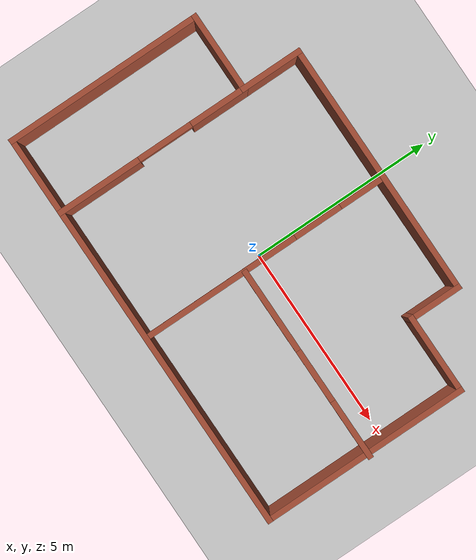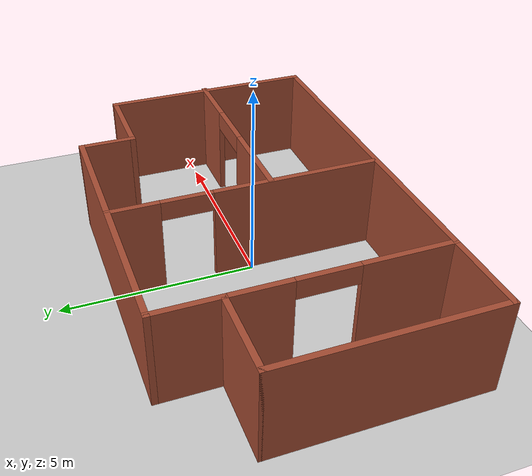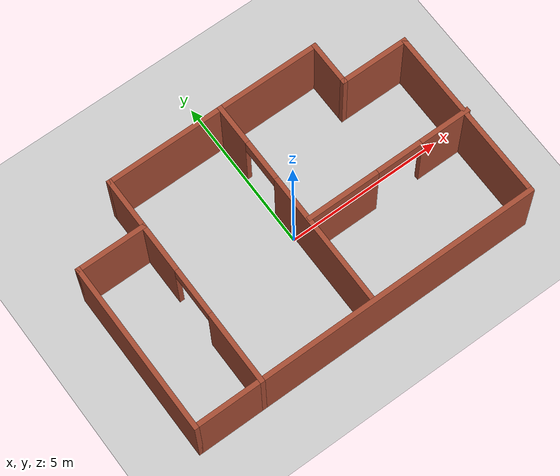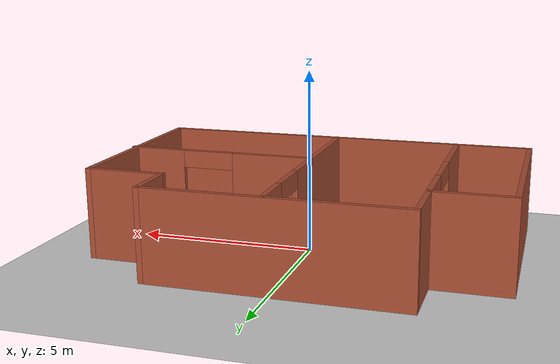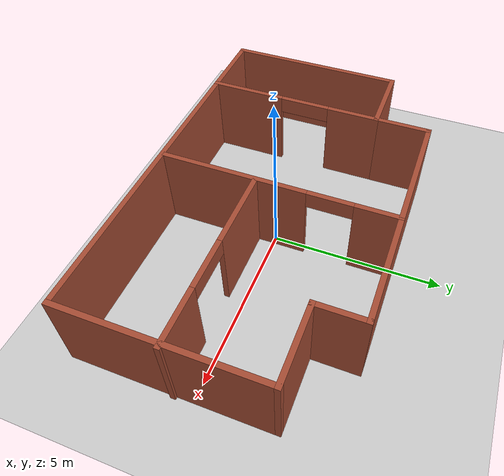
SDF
<sdf version="1.7">
 <world name="default">
  <light name="sun" type="directional">
   <pose>0 0 10 0 -0 0</pose>
   <diffuse>0.8 0.8 0.8 1</diffuse>
   <specular>0.2 0.2 0.2 1</specular>
   <attenuation>
    <range>1000</range>
    <constant>0.9</constant>
    <linear>0.01</linear>
    <quadratic>0.001</quadratic>
   </attenuation>
   <direction>-0.5 0.1 -0.9</direction>
   <spot><inner_angle>0</inner_angle><outer_angle>0</outer_angle><falloff>0</falloff></spot>
  </light>
  <model name="ground_plane">
   <static>1</static>
   <link name="link">
    <collision name="collision">
     <geometry><plane><normal>0 0 1</normal><size>100 100</size></plane></geometry>
     <surface>
      <contact><collide_bitmask>65535</collide_bitmask></contact>
      <friction><ode><mu>100</mu><mu2>50</mu2></ode></friction>
     </surface>
    </collision>
    <visual name="visual">
     <cast_shadows>0</cast_shadows>
     <geometry><plane><normal>0 0 1</normal><size>100 100</size></plane></geometry>
     <material>
      <script><uri>file://media/materials/scripts/gazebo.material</uri><name>Gazebo/Grey</name></script>
     </material>
    </visual>
   </link>
  </model>
  <gravity>0 0 -9.8</gravity>
  <magnetic_field>6e-06 2.3e-05 -4.2e-05</magnetic_field>
  <atmosphere type="adiabatic"/>
  <physics type="ode">
   <max_step_size>0.001</max_step_size>
   <real_time_factor>1</real_time_factor>
   <real_time_update_rate>1000</real_time_update_rate>
  </physics>
  <scene><ambient>0.4 0.4 0.4 1</ambient><background>0.7 0.7 0.7 1</background><shadows>1</shadows></scene>
  <spherical_coordinates>
   <surface_model>EARTH_WGS84</surface_model>
   <latitude_deg>0</latitude_deg>
   <longitude_deg>0</longitude_deg>
   <elevation>0</elevation>
   <heading_deg>0</heading_deg>
  </spherical_coordinates>
  <model name="3">
   <pose>-0.072927 0.06276 0 0 -0 0</pose>
   <link name="Wall_0">
    <collision name="Wall_0_Collision">
     <geometry><box><size>1.75 0.15 2.5</size></box></geometry>
     <pose>0 0 1.25 0 -0 0</pose>
    </collision>
    <visual name="Wall_0_Visual">
     <pose>0 0 1.25 0 -0 0</pose>
     <geometry><box><size>1.75 0.15 2.5</size></box></geometry>
     <material>
      <script><uri>file://media/materials/scripts/gazebo.material</uri><name>Gazebo/Bricks</name></script>
      <ambient>1 1 1 1</ambient>
     </material>
     <meta><layer>0</layer></meta>
    </visual>
    <pose>-3.4855 2.675 0 0 -0 -1.5708</pose>
   </link>
   <link name="Wall_1">
    <collision name="Wall_1_Collision">
     <geometry><box><size>2.25 0.15 2.5</size></box></geometry>
     <pose>0 0 1.25 0 -0 0</pose>
    </collision>
    <visual name="Wall_1_Visual">
     <pose>0 0 1.25 0 -0 0</pose>
     <geometry><box><size>2.25 0.15 2.5</size></box></geometry>
     <material>
      <script><uri>file://media/materials/scripts/gazebo.material</uri><name>Gazebo/Bricks</name></script>
      <ambient>1 1 1 1</ambient>
     </material>
     <meta><layer>0</layer></meta>
    </visual>
    <pose>-4.5355 1.875 0 0 -0 3.14159</pose>
   </link>
   <link name="Wall_11">
    <pose>-3.4855 -0.8 0 0 -0 -1.5708</pose>
    <visual name="Wall_11_Visual_0">
     <pose>-1.94236 0 1.25 0 -0 0</pose>
     <geometry><box><size>1.61527 0.15 2.5</size></box></geometry>
     <material>
      <script><uri>file://media/materials/scripts/gazebo.material</uri><name>Gazebo/Bricks</name></script>
      <ambient>1 1 1 1</ambient>
     </material>
     <meta><layer>0</layer></meta>
    </visual>
    <collision name="Wall_11_Collision_0">
     <geometry><box><size>1.61527 0.15 2.5</size></box></geometry>
     <pose>-1.94236 0 1.25 0 -0 0</pose>
    </collision>
    <visual name="Wall_11_Visual_1">
     <pose>1.5694 0 1.25 0 -0 0</pose>
     <geometry><box><size>2.36121 0.15 2.5</size></box></geometry>
     <material>
      <script><uri>file://media/materials/scripts/gazebo.material</uri><name>Gazebo/Bricks</name></script>
      <ambient>1 1 1 1</ambient>
     </material>
     <meta><layer>0</layer></meta>
    </visual>
    <collision name="Wall_11_Collision_1">
     <geometry><box><size>2.36121 0.15 2.5</size></box></geometry>
     <pose>1.5694 0 1.25 0 -0 0</pose>
    </collision>
    <visual name="Wall_11_Visual_2">
     <pose>-0.372967 0 2.25 0 -0 0</pose>
     <geometry><box><size>1.52352 0.15 0.5</size></box></geometry>
     <material>
      <script><uri>file://media/materials/scripts/gazebo.material</uri><name>Gazebo/Bricks</name></script>
      <ambient>1 1 1 1</ambient>
     </material>
     <meta><layer>0</layer></meta>
    </visual>
    <collision name="Wall_11_Collision_2">
     <geometry><box><size>1.52352 0.15 0.5</size></box></geometry>
     <pose>-0.372967 0 2.25 0 -0 0</pose>
    </collision>
   </link>
   <link name="Wall_13">
    <pose>2.91051 -0.587942 0 0 -0 0</pose>
    <visual name="Wall_13_Visual_0">
     <pose>-1.57481 0 1.25 0 -0 0</pose>
     <geometry><box><size>2.35039 0.15 2.5</size></box></geometry>
     <material>
      <script><uri>file://media/materials/scripts/gazebo.material</uri><name>Gazebo/Bricks</name></script>
      <ambient>1 1 1 1</ambient>
     </material>
     <meta><layer>0</layer></meta>
    </visual>
    <collision name="Wall_13_Collision_0">
     <geometry><box><size>2.35039 0.15 2.5</size></box></geometry>
     <pose>-1.57481 0 1.25 0 -0 0</pose>
    </collision>
    <visual name="Wall_13_Visual_1">
     <pose>1.91684 0 1.25 0 -0 0</pose>
     <geometry><box><size>1.66632 0.15 2.5</size></box></geometry>
     <material>
      <script><uri>file://media/materials/scripts/gazebo.material</uri><name>Gazebo/Bricks</name></script>
      <ambient>1 1 1 1</ambient>
     </material>
     <meta><layer>0</layer></meta>
    </visual>
    <collision name="Wall_13_Collision_1">
     <geometry><box><size>1.66632 0.15 2.5</size></box></geometry>
     <pose>1.91684 0 1.25 0 -0 0</pose>
    </collision>
    <visual name="Wall_13_Visual_2">
     <pose>0.342036 0 2.25 0 -0 0</pose>
     <geometry><box><size>1.48329 0.15 0.5</size></box></geometry>
     <material>
      <script><uri>file://media/materials/scripts/gazebo.material</uri><name>Gazebo/Bricks</name></script>
      <ambient>1 1 1 1</ambient>
     </material>
     <meta><layer>0</layer></meta>
    </visual>
    <collision name="Wall_13_Collision_2">
     <geometry><box><size>1.48329 0.15 0.5</size></box></geometry>
     <pose>0.342036 0 2.25 0 -0 0</pose>
    </collision>
   </link>
   <link name="Wall_2">
    <collision name="Wall_2_Collision">
     <geometry><box><size>5.5 0.15 2.5</size></box></geometry>
     <pose>0 0 1.25 0 -0 0</pose>
    </collision>
    <visual name="Wall_2_Visual">
     <pose>0 0 1.25 0 -0 0</pose>
     <geometry><box><size>5.5 0.15 2.5</size></box></geometry>
     <material>
      <script><uri>file://media/materials/scripts/gazebo.material</uri><name>Gazebo/Bricks</name></script>
      <ambient>1 1 1 1</ambient>
     </material>
     <meta><layer>0</layer></meta>
    </visual>
    <pose>-5.58551 -0.8 0 0 -0 -1.5708</pose>
   </link>
   <link name="Wall_3">
    <collision name="Wall_3_Collision">
     <geometry><box><size>11.25 0.15 2.5</size></box></geometry>
     <pose>0 0 1.25 0 -0 0</pose>
    </collision>
    <visual name="Wall_3_Visual">
     <pose>0 0 1.25 0 -0 0</pose>
     <geometry><box><size>11.25 0.15 2.5</size></box></geometry>
     <material>
      <script><uri>file://media/materials/scripts/gazebo.material</uri><name>Gazebo/Bricks</name></script>
      <ambient>1 1 1 1</ambient>
     </material>
     <meta><layer>0</layer></meta>
    </visual>
    <pose>-0.035505 -3.475 0 0 -0 0</pose>
   </link>
   <link name="Wall_4">
    <collision name="Wall_4_Collision">
     <geometry><box><size>5.75 0.15 2.5</size></box></geometry>
     <pose>0 0 1.25 0 -0 0</pose>
    </collision>
    <visual name="Wall_4_Visual">
     <pose>0 0 1.25 0 -0 0</pose>
     <geometry><box><size>5.75 0.15 2.5</size></box></geometry>
     <material>
      <script><uri>file://media/materials/scripts/gazebo.material</uri><name>Gazebo/Bricks</name></script>
      <ambient>1 1 1 1</ambient>
     </material>
     <meta><layer>0</layer></meta>
    </visual>
    <pose>5.5145 -0.675 0 0 -0 1.5708</pose>
   </link>
   <link name="Wall_5">
    <collision name="Wall_5_Collision">
     <geometry><box><size>2.25 0.15 2.5</size></box></geometry>
     <pose>0 0 1.25 0 -0 0</pose>
    </collision>
    <visual name="Wall_5_Visual">
     <pose>0 0 1.25 0 -0 0</pose>
     <geometry><box><size>2.25 0.15 2.5</size></box></geometry>
     <material>
      <script><uri>file://media/materials/scripts/gazebo.material</uri><name>Gazebo/Bricks</name></script>
      <ambient>1 1 1 1</ambient>
     </material>
     <meta><layer>0</layer></meta>
    </visual>
    <pose>4.4645 2.125 0 0 -0 3.14159</pose>
   </link>
   <link name="Wall_6">
    <collision name="Wall_6_Collision">
     <geometry><box><size>1.5 0.15 2.5</size></box></geometry>
     <pose>0 0 1.25 0 -0 0</pose>
    </collision>
    <visual name="Wall_6_Visual">
     <pose>0 0 1.25 0 -0 0</pose>
     <geometry><box><size>1.5 0.15 2.5</size></box></geometry>
     <material>
      <script><uri>file://media/materials/scripts/gazebo.material</uri><name>Gazebo/Bricks</name></script>
      <ambient>1 1 1 1</ambient>
     </material>
     <meta><layer>0</layer></meta>
    </visual>
    <pose>3.4145 2.8 0 0 -0 1.5708</pose>
   </link>
   <link name="Wall_7">
    <collision name="Wall_7_Collision">
     <geometry><box><size>7.05 0.15 2.5</size></box></geometry>
     <pose>0 0 1.25 0 -0 0</pose>
    </collision>
    <visual name="Wall_7_Visual">
     <pose>0 0 1.25 0 -0 0</pose>
     <geometry><box><size>7.05 0.15 2.5</size></box></geometry>
     <material>
      <script><uri>file://media/materials/scripts/gazebo.material</uri><name>Gazebo/Bricks</name></script>
      <ambient>1 1 1 1</ambient>
     </material>
     <meta><layer>0</layer></meta>
    </visual>
    <pose>-0.035505 3.475 0 0 -0 3.14159</pose>
   </link>
   <link name="Wall_9">
    <pose>0.195278 0.05 0 0 -0 -1.5708</pose>
    <visual name="Wall_9_Visual_0">
     <pose>-2.83267 0 1.25 0 -0 0</pose>
     <geometry><box><size>1.33465 0.15 2.5</size></box></geometry>
     <material>
      <script><uri>file://media/materials/scripts/gazebo.material</uri><name>Gazebo/Bricks</name></script>
      <ambient>1 1 1 1</ambient>
     </material>
     <meta><layer>0</layer></meta>
    </visual>
    <collision name="Wall_9_Collision_0">
     <geometry><box><size>1.33465 0.15 2.5</size></box></geometry>
     <pose>-2.83267 0 1.25 0 -0 0</pose>
    </collision>
    <visual name="Wall_9_Visual_1">
     <pose>1.32852 0 1.25 0 -0 0</pose>
     <geometry><box><size>4.34296 0.15 2.5</size></box></geometry>
     <material>
      <script><uri>file://media/materials/scripts/gazebo.material</uri><name>Gazebo/Bricks</name></script>
      <ambient>1 1 1 1</ambient>
     </material>
     <meta><layer>0</layer></meta>
    </visual>
    <collision name="Wall_9_Collision_1">
     <geometry><box><size>4.34296 0.15 2.5</size></box></geometry>
     <pose>1.32852 0 1.25 0 -0 0</pose>
    </collision>
    <visual name="Wall_9_Visual_2">
     <pose>-1.50415 0 2.25 0 -0 0</pose>
     <geometry><box><size>1.32238 0.15 0.5</size></box></geometry>
     <material>
      <script><uri>file://media/materials/scripts/gazebo.material</uri><name>Gazebo/Bricks</name></script>
      <ambient>1 1 1 1</ambient>
     </material>
     <meta><layer>0</layer></meta>
    </visual>
    <collision name="Wall_9_Collision_2">
     <geometry><box><size>1.32238 0.15 0.5</size></box></geometry>
     <pose>-1.50415 0 2.25 0 -0 0</pose>
    </collision>
   </link>
   <static>1</static>
  </model>
 </world>
</sdf>
